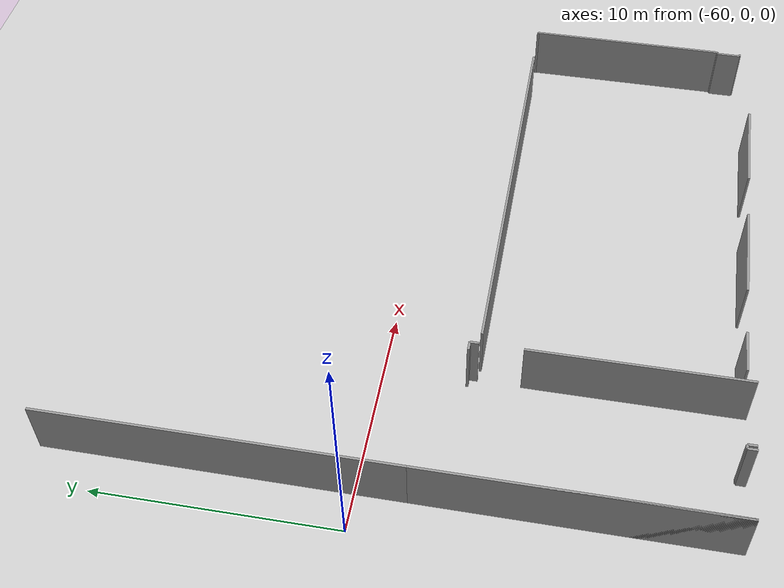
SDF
<sdf version="1.6">
 <world name="default">
  <model name="ground_plane">
   <static>1</static>
   <link name="link">
    <collision name="collision">
     <geometry><plane><normal>0 0 1</normal><size>100 100</size></plane></geometry>
     <surface><friction><ode><mu>100</mu><mu2>50</mu2></ode></friction></surface>
    </collision>
    <visual name="visual">
     <cast_shadows>0</cast_shadows>
     <geometry><plane><normal>0 0 1</normal><size>100 100</size></plane></geometry>
     <material>
      <script><uri>file://media/materials/scripts/gazebo.material</uri><name>Gazebo/Grey</name></script>
     </material>
    </visual>
   </link>
  </model>
  <model name="0510040946_A-40">
   <static>1</static>
   <link name="Wall_11">
    <collision name="Wall_11_Collision">
     <geometry><box><size>12.5573726831 0.1 2.5</size></box></geometry>
     <pose>6.27868634153 0 1.25 0 0 0</pose>
    </collision>
    <visual name="Wall_11_Visual">
     <pose>6.27868634153 0 1.25 0 0 0</pose>
     <geometry><box><size>12.5573726831 0.1 2.5</size></box></geometry>
     <material>
      <script><uri>file://media/materials/scripts/gazebo.material</uri><name>Gazebo/Grey</name></script>
      <ambient>1 1 1 1</ambient>
     </material>
    </visual>
    <pose>0.0 -27.1080616626 0 0 0 1.57079632679</pose>
   </link>
   <link name="Wall_17">
    <collision name="Wall_17_Collision">
     <geometry><box><size>0.375022987121 0.1 2.5</size></box></geometry>
     <pose>0.18751149356 0 1.25 0 0 0</pose>
    </collision>
    <visual name="Wall_17_Visual">
     <pose>0.18751149356 0 1.25 0 0 0</pose>
     <geometry><box><size>0.375022987121 0.1 2.5</size></box></geometry>
     <material>
      <script><uri>file://media/materials/scripts/gazebo.material</uri><name>Gazebo/Grey</name></script>
      <ambient>1 1 1 1</ambient>
     </material>
    </visual>
    <pose>5.6301641756 -15.9443743381 0 0 0 0.0</pose>
   </link>
   <link name="Wall_18">
    <collision name="Wall_18_Collision">
     <geometry><box><size>0.37984235591 0.1 2.5</size></box></geometry>
     <pose>0.189921177955 0 1.25 0 0 0</pose>
    </collision>
    <visual name="Wall_18_Visual">
     <pose>0.189921177955 0 1.25 0 0 0</pose>
     <geometry><box><size>0.37984235591 0.1 2.5</size></box></geometry>
     <material>
      <script><uri>file://media/materials/scripts/gazebo.material</uri><name>Gazebo/Grey</name></script>
      <ambient>1 1 1 1</ambient>
     </material>
    </visual>
    <pose>6.00518716272 -15.9443743381 0 0 0 -1.57079632679</pose>
   </link>
   <link name="Wall_19">
    <collision name="Wall_19_Collision">
     <geometry><box><size>9.00410280475 0.1 2.5</size></box></geometry>
     <pose>4.50205140237 0 1.25 0 0 0</pose>
    </collision>
    <visual name="Wall_19_Visual">
     <pose>4.50205140237 0 1.25 0 0 0</pose>
     <geometry><box><size>9.00410280475 0.1 2.5</size></box></geometry>
     <material>
      <script><uri>file://media/materials/scripts/gazebo.material</uri><name>Gazebo/Grey</name></script>
      <ambient>1 1 1 1</ambient>
     </material>
    </visual>
    <pose>6.00518716272 -18.0874715435 0 0 0 -1.57079632679</pose>
   </link>
   <link name="Wall_20">
    <collision name="Wall_20_Collision">
     <geometry><box><size>0.390876173928 0.1 2.5</size></box></geometry>
     <pose>0.195438086964 0 1.25 0 0 0</pose>
    </collision>
    <visual name="Wall_20_Visual">
     <pose>0.195438086964 0 1.25 0 0 0</pose>
     <geometry><box><size>0.390876173928 0.1 2.5</size></box></geometry>
     <material>
      <script><uri>file://media/materials/scripts/gazebo.material</uri><name>Gazebo/Grey</name></script>
      <ambient>1 1 1 1</ambient>
     </material>
    </visual>
    <pose>3.09251285693 -27.0915743483 0 0 0 1.57079632679</pose>
   </link>
   <link name="Wall_21">
    <collision name="Wall_21_Collision">
     <geometry><box><size>0.17654108829 0.1 2.5</size></box></geometry>
     <pose>0.0882705441448 0 1.25 0 0 0</pose>
    </collision>
    <visual name="Wall_21_Visual">
     <pose>0.0882705441448 0 1.25 0 0 0</pose>
     <geometry><box><size>0.17654108829 0.1 2.5</size></box></geometry>
     <material>
      <script><uri>file://media/materials/scripts/gazebo.material</uri><name>Gazebo/Grey</name></script>
      <ambient>1 1 1 1</ambient>
     </material>
    </visual>
    <pose>3.09251285693 -26.7006981743 0 0 0 3.14159265359</pose>
   </link>
   <link name="Wall_22">
    <collision name="Wall_22_Collision">
     <geometry><box><size>0.397217448652 0.1 2.5</size></box></geometry>
     <pose>0.198608724326 0 1.25 0 0 0</pose>
    </collision>
    <visual name="Wall_22_Visual">
     <pose>0.198608724326 0 1.25 0 0 0</pose>
     <geometry><box><size>0.397217448652 0.1 2.5</size></box></geometry>
     <material>
      <script><uri>file://media/materials/scripts/gazebo.material</uri><name>Gazebo/Grey</name></script>
      <ambient>1 1 1 1</ambient>
     </material>
    </visual>
    <pose>2.91597176864 -26.7006981743 0 0 0 -1.57079632679</pose>
   </link>
   <link name="Wall_23">
    <collision name="Wall_23_Collision">
     <geometry><box><size>17.241165019 0.1 2.5</size></box></geometry>
     <pose>8.6205825095 0 1.25 0 0 0</pose>
    </collision>
    <visual name="Wall_23_Visual">
     <pose>8.6205825095 0 1.25 0 0 0</pose>
     <geometry><box><size>17.241165019 0.1 2.5</size></box></geometry>
     <material>
      <script><uri>file://media/materials/scripts/gazebo.material</uri><name>Gazebo/Grey</name></script>
      <ambient>1 1 1 1</ambient>
     </material>
    </visual>
    <pose>6.48052911596 -16.3597278325 0 0 0 0.0</pose>
   </link>
   <link name="Wall_24">
    <collision name="Wall_24_Collision">
     <geometry><box><size>0.0834511753553 0.1 2.5</size></box></geometry>
     <pose>0.0417255876776 0 1.25 0 0 0</pose>
    </collision>
    <visual name="Wall_24_Visual">
     <pose>0.0417255876776 0 1.25 0 0 0</pose>
     <geometry><box><size>0.0834511753553 0.1 2.5</size></box></geometry>
     <material>
      <script><uri>file://media/materials/scripts/gazebo.material</uri><name>Gazebo/Grey</name></script>
      <ambient>1 1 1 1</ambient>
     </material>
    </visual>
    <pose>25.5103140833 -16.3597278325 0 0 0 0.0</pose>
   </link>
   <link name="Wall_25">
    <collision name="Wall_25_Collision">
     <geometry><box><size>8.75197372176 0.1 2.5</size></box></geometry>
     <pose>4.37598686088 0 1.25 0 0 0</pose>
    </collision>
    <visual name="Wall_25_Visual">
     <pose>4.37598686088 0 1.25 0 0 0</pose>
     <geometry><box><size>8.75197372176 0.1 2.5</size></box></geometry>
     <material>
      <script><uri>file://media/materials/scripts/gazebo.material</uri><name>Gazebo/Grey</name></script>
      <ambient>1 1 1 1</ambient>
     </material>
    </visual>
    <pose>25.5937652587 -16.3597278325 0 0 0 -1.57079632679</pose>
   </link>
   <link name="Wall_26">
    <collision name="Wall_26_Collision">
     <geometry><box><size>0.104250556447 0.1 2.5</size></box></geometry>
     <pose>0.0521252782234 0 1.25 0 0 0</pose>
    </collision>
    <visual name="Wall_26_Visual">
     <pose>0.0521252782234 0 1.25 0 0 0</pose>
     <geometry><box><size>0.104250556447 0.1 2.5</size></box></geometry>
     <material>
      <script><uri>file://media/materials/scripts/gazebo.material</uri><name>Gazebo/Grey</name></script>
      <ambient>1 1 1 1</ambient>
     </material>
    </visual>
    <pose>25.5937652587 -25.1117015542 0 0 0 3.14159265359</pose>
   </link>
   <link name="Wall_27">
    <collision name="Wall_27_Collision">
     <geometry><box><size>1.06799748886 0.1 2.5</size></box></geometry>
     <pose>0.533998744428 0 1.25 0 0 0</pose>
    </collision>
    <visual name="Wall_27_Visual">
     <pose>0.533998744428 0 1.25 0 0 0</pose>
     <geometry><box><size>1.06799748886 0.1 2.5</size></box></geometry>
     <material>
      <script><uri>file://media/materials/scripts/gazebo.material</uri><name>Gazebo/Grey</name></script>
      <ambient>1 1 1 1</ambient>
     </material>
    </visual>
    <pose>25.4895147022 -25.1117015542 0 0 0 -1.57079632679</pose>
   </link>
   <link name="Wall_28">
    <collision name="Wall_28_Collision">
     <geometry><box><size>0.110084529192 0.1 2.5</size></box></geometry>
     <pose>0.055042264596 0 1.25 0 0 0</pose>
    </collision>
    <visual name="Wall_28_Visual">
     <pose>0.055042264596 0 1.25 0 0 0</pose>
     <geometry><box><size>0.110084529192 0.1 2.5</size></box></geometry>
     <material>
      <script><uri>file://media/materials/scripts/gazebo.material</uri><name>Gazebo/Grey</name></script>
      <ambient>1 1 1 1</ambient>
     </material>
    </visual>
    <pose>25.4895147022 -26.1796990431 0 0 0 0.0</pose>
   </link>
   <link name="Wall_31">
    <collision name="Wall_31_Collision">
     <geometry><box><size>4.30179394662 0.1 2.5</size></box></geometry>
     <pose>2.15089697331 0 1.25 0 0 0</pose>
    </collision>
    <visual name="Wall_31_Visual">
     <pose>2.15089697331 0 1.25 0 0 0</pose>
     <geometry><box><size>4.30179394662 0.1 2.5</size></box></geometry>
     <material>
      <script><uri>file://media/materials/scripts/gazebo.material</uri><name>Gazebo/Grey</name></script>
      <ambient>1 1 1 1</ambient>
     </material>
    </visual>
    <pose>21.3704762931 -26.6708941831 0 0 0 3.14159265359</pose>
   </link>
   <link name="Wall_32">
    <collision name="Wall_32_Collision">
     <geometry><box><size>4.31282776464 0.1 2.5</size></box></geometry>
     <pose>2.15641388232 0 1.25 0 0 0</pose>
    </collision>
    <visual name="Wall_32_Visual">
     <pose>2.15641388232 0 1.25 0 0 0</pose>
     <geometry><box><size>4.31282776464 0.1 2.5</size></box></geometry>
     <material>
      <script><uri>file://media/materials/scripts/gazebo.material</uri><name>Gazebo/Grey</name></script>
      <ambient>1 1 1 1</ambient>
     </material>
    </visual>
    <pose>14.8899471772 -26.6708941831 0 0 0 3.14159265359</pose>
   </link>
   <link name="Wall_33">
    <collision name="Wall_33_Collision">
     <geometry><box><size>1.89376450904 0.1 2.5</size></box></geometry>
     <pose>0.946882254521 0 1.25 0 0 0</pose>
    </collision>
    <visual name="Wall_33_Visual">
     <pose>0.946882254521 0 1.25 0 0 0</pose>
     <geometry><box><size>1.89376450904 0.1 2.5</size></box></geometry>
     <material>
      <script><uri>file://media/materials/scripts/gazebo.material</uri><name>Gazebo/Grey</name></script>
      <ambient>1 1 1 1</ambient>
     </material>
    </visual>
    <pose>8.38278470738 -26.6708941831 0 0 0 -3.12973867801</pose>
   </link>
   <link name="Wall_332">
    <collision name="Wall_332_Collision">
     <geometry><box><size>27.110471347 0.1 2.5</size></box></geometry>
     <pose>13.5552356735 0 1.25 0 0 0</pose>
    </collision>
    <visual name="Wall_332_Visual">
     <pose>13.5552356735 0 1.25 0 0 0</pose>
     <geometry><box><size>27.110471347 0.1 2.5</size></box></geometry>
     <material>
      <script><uri>file://media/materials/scripts/gazebo.material</uri><name>Gazebo/Grey</name></script>
      <ambient>1 1 1 1</ambient>
     </material>
    </visual>
    <pose>0.0 -27.110471347 0 0 0 1.57079632679</pose>
   </link>
   <pose>-58.35 12.510471347 0 0 0 0</pose>
  </model>
 </world>
</sdf>
